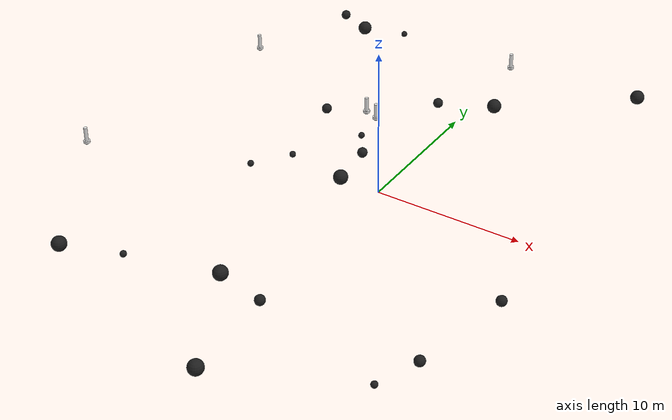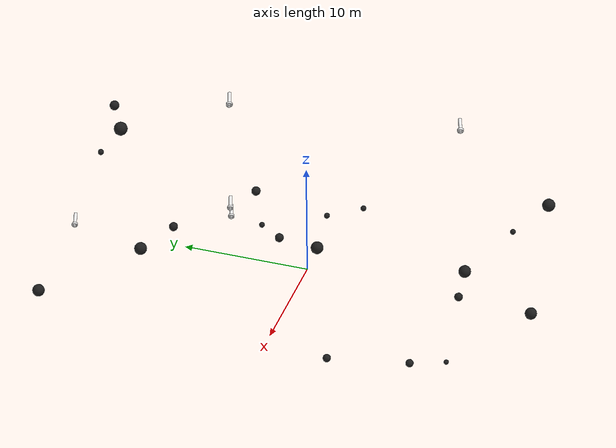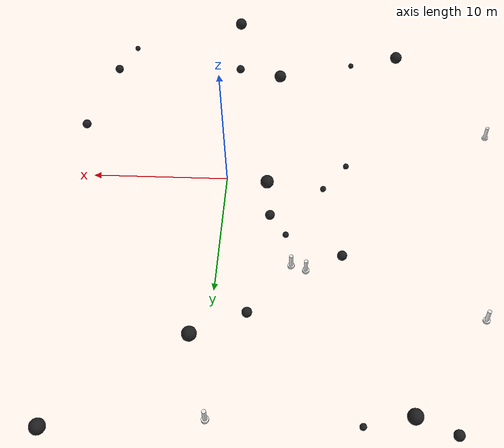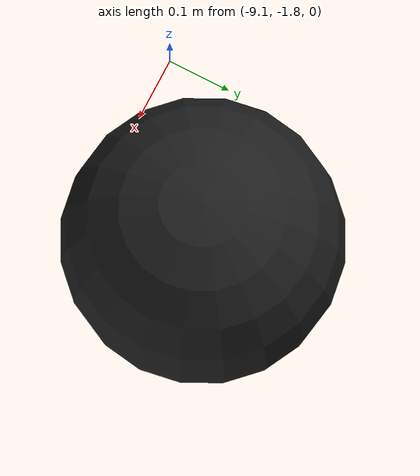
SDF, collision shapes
<?xml version="1.0"?>
<!-- automaticly generated by the 'generate_avoid_obstacls_buoys' script -->
<sdf version="1.6">
  <model name="robotx_obstacle_course">
    <include>
      <name>polyform_a3_0</name>
      <pose>-9.519012999376733 -13.652641113821375 0.0 0 0 0 </pose>
      <uri>model://polyform_a3</uri>
    </include>

    <include>
      <name>polyform_a3_1</name>
      <pose>-8.87493922022561 -1.627324511417335 0.0 0 0 0 </pose>
      <uri>model://polyform_a3</uri>
    </include>

    <include>
      <name>polyform_a3_2</name>
      <pose>-7.159978379193316 0.7357128239014834 0.0 0 0 0 </pose>
      <uri>model://polyform_a3</uri>
    </include>

    <include>
      <name>polyform_a3_3</name>
      <pose>-9.522282977394214 19.043411395097344 0.0 0 0 0 </pose>
      <uri>model://polyform_a3</uri>
    </include>

    <include>
      <name>polyform_a3_4</name>
      <pose>9.312582107619292 -15.389030932674022 0.0 0 0 0 </pose>
      <uri>model://polyform_a3</uri>
    </include>

    <include>
      <name>polyform_a3_5</name>
      <pose>-4.548997254625622 5.140047181588464 0.0 0 0 0 </pose>
      <uri>model://polyform_a3</uri>
    </include>

    <include>
      <name>polyform_a5_0</name>
      <pose>-14.997682946576024 19.341944205745648 0.0 0 0 0 </pose>
      <uri>model://polyform_a5</uri>
    </include>

    <include>
      <name>polyform_a5_1</name>
      <pose>-2.2710052541948755 11.582333680956125 0.0 0 0 0 </pose>
      <uri>model://polyform_a5</uri>
    </include>

    <include>
      <name>polyform_a5_2</name>
      <pose>11.764743031663464 -5.549537103302772 0.0 0 0 0 </pose>
      <uri>model://polyform_a5</uri>
    </include>

    <include>
      <name>polyform_a5_3</name>
      <pose>-3.35584241716008 3.370325124412858 0.0 0 0 0 </pose>
      <uri>model://polyform_a5</uri>
    </include>

    <include>
      <name>polyform_a5_4</name>
      <pose>10.406870952234296 -12.487663782943375 0.0 0 0 0 </pose>
      <uri>model://polyform_a5</uri>
    </include>

    <include>
      <name>polyform_a5_5</name>
      <pose>-8.473314087518574 6.808754326409364 0.0 0 0 0 </pose>
      <uri>model://polyform_a5</uri>
    </include>

    <include>
      <name>polyform_a5_6</name>
      <pose>-0.01406954511950076 -12.857252913458916 0.0 0 0 0 </pose>
      <uri>model://polyform_a5</uri>
    </include>

    <include>
      <name>polyform_a7_0</name>
      <pose>-3.474347943013644 -12.032190591796063 0.0 0 0 0 </pose>
      <uri>model://polyform_a7</uri>
    </include>

    <include>
      <name>polyform_a7_1</name>
      <pose>1.2679761434814694 13.294828122719302 0.0 0 0 0 </pose>
      <uri>model://polyform_a7</uri>
    </include>

    <include>
      <name>polyform_a7_2</name>
      <pose>-12.589962197118204 18.294368946850426 0.0 0 0 0 </pose>
      <uri>model://polyform_a7</uri>
    </include>

    <include>
      <name>polyform_a7_3</name>
      <pose>-2.9834133942193333 0.16028156645749192 0.0 0 0 0 </pose>
      <uri>model://polyform_a7</uri>
    </include>

    <include>
      <name>polyform_a7_4</name>
      <pose>0.41883787303788367 -19.368341911527423 0.0 0 0 0 </pose>
      <uri>model://polyform_a7</uri>
    </include>

    <include>
      <name>polyform_a7_5</name>
      <pose>9.267602746704966 19.73220159563317 0.0 0 0 0 </pose>
      <uri>model://polyform_a7</uri>
    </include>

    <include>
      <name>polyform_a7_6</name>
      <pose>-13.484898669209308 -14.934608812366497 0.0 0 0 0 </pose>
      <uri>model://polyform_a7</uri>
    </include>

    <include>
      <name>surmark46104_0</name>
      <pose>-5.006632616797159 7.7287777680452265 0.0 0 0 0 </pose>
      <uri>model://surmark46104</uri>
    </include>

    <include>
      <name>surmark46104_1</name>
      <pose>-19.883958793251605 -5.230837509620567 0.0 0 0 0 </pose>
      <uri>model://surmark46104</uri>
    </include>

    <include>
      <name>surmark46104_2</name>
      <pose>-17.652826976795495 11.573443400964479 0.0 0 0 0 </pose>
      <uri>model://surmark46104</uri>
    </include>

    <include>
      <name>surmark46104_3</name>
      <pose>-6.009231492000726 8.10094878855033 0.0 0 0 0 </pose>
      <uri>model://surmark46104</uri>
    </include>

    <include>
      <name>surmark46104_4</name>
      <pose>-0.3508369093648547 18.914893194752246 0.0 0 0 0 </pose>
      <uri>model://surmark46104</uri>
    </include>

  </model>
</sdf>

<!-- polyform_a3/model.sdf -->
<sdf version="1.5">
  <!-- Reference: https://www.polyformus.com/buoys/a-series -->
  <model name="polyform_a3">
    <static>true</static>
    <pose>0 0 0 0 0 0</pose>
    <link name="base_link">
      <inertia>
        <!-- Reference: https://www.sailrite.com/PDF/Polyform-Buoys-Fenders-Accessories.pdf, page 8 -->
        <mass>3.0844</mass>
      </inertia>
      <visual name="visual">
        <geometry>
          <sphere><radius>0.216</radius></sphere>
        </geometry>
        <material>
          <script>
            <uri>file://media/materials/scripts/gazebo.material</uri>
            <name>Gazebo/Black</name>
          </script>
        </material>
      </visual>
      <collision name="collision">
        <geometry>
          <sphere><radius>0.216</radius></sphere>
        </geometry>
      </collision>
    </link>
  </model>
</sdf>

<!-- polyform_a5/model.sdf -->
<sdf version="1.5">
  <!-- Reference: https://www.polyformus.com/buoys/a-series -->
  <model name="polyform_a5">
    <static>true</static>
    <pose>0 0 0 0 0 0</pose>
    <link name="base_link">
      <inertia>
        <!-- Reference: https://www.sailrite.com/PDF/Polyform-Buoys-Fenders-Accessories.pdf, page 8 -->
        <mass>8.98</mass>
      </inertia>
      <visual name="visual">
        <geometry>
          <sphere><radius>0.343</radius></sphere>
        </geometry>
        <material>
          <script>
            <uri>file://media/materials/scripts/gazebo.material</uri>
            <name>Gazebo/Black</name>
          </script>
        </material>
      </visual>
      <collision name="collision">
        <geometry>
          <sphere><radius>0.343</radius></sphere>
        </geometry>
      </collision>
    </link>
  </model>
</sdf>

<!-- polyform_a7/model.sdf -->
<sdf version="1.5">
  <!-- Reference: https://www.polyformus.com/buoys/a-series -->
  <model name="polyform_a7">
    <static>true</static>
    <pose>0 0 0 0 0 0</pose>
    <link name="base_link">
      <inertia>
        <!-- Reference: https://www.sailrite.com/PDF/Polyform-Buoys-Fenders-Accessories.pdf, page 8 -->
        <mass>24.49</mass>
      </inertia>
      <visual name="visual">
        <geometry>
          <sphere><radius>.4955</radius></sphere>
        </geometry>
        <material>
          <script>
            <uri>file://media/materials/scripts/gazebo.material</uri>
            <name>Gazebo/Black</name>
          </script>
        </material>
      </visual>
      <collision name="collision">
        <geometry>
          <sphere><radius>.4955</radius></sphere>
        </geometry>
      </collision>
    </link>
  </model>
</sdf>

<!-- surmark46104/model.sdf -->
<sdf version="1.6">
  <model name="surmark46104">
    <link name="link">
      <velocity_decay>
        <linear>0.001</linear>
        <angular>0.001</angular>
      </velocity_decay>
      <inertial>
        <pose>0 0 -10 0 0 0</pose>
        <mass>17.2365</mass>
        <inertia>
          <ixx>2.5137</ixx>
          <ixy>0</ixy>
          <ixz>0</ixz>
          <iyy>2.5137</iyy>
          <iyz>0</iyz>
          <izz>0.5386</izz>
        </inertia>
      </inertial>
      <collision name="collision_inner">
        <pose>0 0 0.367 0 0 0</pose>
        <geometry>
          <cylinder>
            <radius>0.13</radius>
            <length>1.25</length>
          </cylinder>
        </geometry>
      </collision>
      <collision name="collision_outer">
        <pose>0 0 -0.075 0 0 0</pose>
        <geometry>
          <cylinder>
            <radius>0.23</radius>
            <length>0.16</length>
          </cylinder>
        </geometry>
      </collision>
      <visual name="visual">
        <geometry>
	        <mesh><uri>model://surmark46104/mesh/surmark46104.dae</uri></mesh>
        </geometry>
        <material>
          <script>
            <uri>file://media/materials/scripts/gazebo.material</uri>
            <name>Gazebo/White</name>
          </script>
        </material>
      </visual>
    </link>
    <plugin name="BuoyancyPlugin" filename="libbuoyancy_gazebo_plugin.so">
      <fluid_density>1000</fluid_density>
      <fluid_level>0.0</fluid_level>
      <fluid_drag>5.0</fluid_drag>
      <link>
        <name>link</name>
        <center_of_volume>0 0 0.5</center_of_volume>
        <area>0.63</area>
        <height>0.2</height>
      </link>
    </plugin>
  </model>
</sdf>
